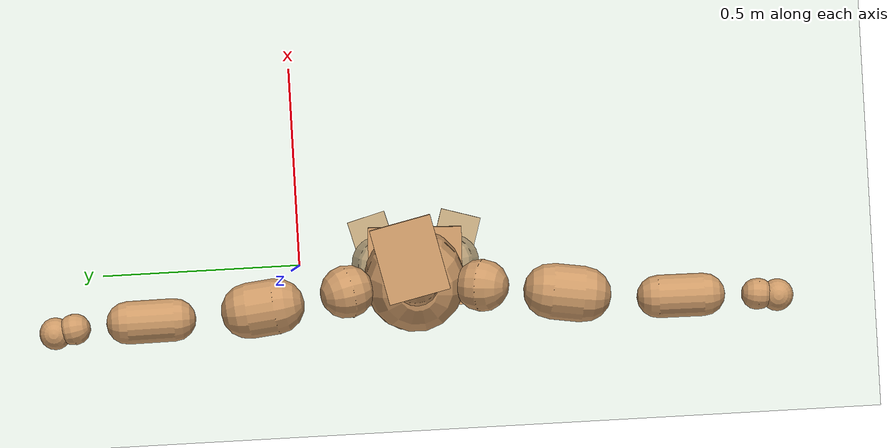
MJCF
<mujoco model="humanoid">
  <compiler coordinate="local" angle="radian"/>
  <default>
    <joint damping="0.0" armature="0.01" stiffness="0.0" limited="true"/>
    <geom conaffinity="1" condim="3" contype="7" margin="0.001" rgba="0.8 0.6 .4 1"/>
  </default>
  <asset>
    <texture type="skybox" builtin="gradient" rgb1=".4 .5 .6" rgb2="0 0 0" width="100" height="100"/>
    <texture builtin="flat" height="1278" mark="cross" markrgb="1 1 1" name="texgeom" random="0.01" rgb1="0.8 0.6 0.4" rgb2="0.8 0.6 0.4" type="cube" width="127"/>
    <texture builtin="checker" height="100" name="texplane" rgb1="0 0 0" rgb2="0.8 0.8 0.8" type="2d" width="100"/>
    <material name="MatPlane" reflectance="0.5" shininess="1" specular="1" texrepeat="60 60" texture="texplane"/>
    <material name="geom" texture="texgeom" texuniform="true"/>
  </asset>
  <worldbody>
    <light cutoff="100" diffuse="1 1 1" dir="-0 0 -1.3" directional="true" exponent="1" pos="0 0 1.3" specular=".1 .1 .1"/>
    <geom conaffinity="1" condim="3" name="floor" pos="0 0 0" rgba="0.8 0.9 0.8 1" size="100 100 .2" type="plane" material="MatPlane"/>
    <body name="Pelvis" pos="-0.0027 -0.2928 0.0415">
      <freejoint name="Pelvis"/>
      <geom type="box" contype="1" conaffinity="1" density="5359.374703" pos="-0.0128 0.0005 -0.0082" size="0.0977 0.1177 0.052" quat="0.9998 0.0000 0.0000 -0.0186" name="Pelvis"/>
      <body name="L_Hip" pos="-0.015 0.0673 -0.0898">
        <joint name="L_Hip_x" type="hinge" pos="0 0 0" axis="1 0 0" stiffness="1600" damping="160" armature="0.02" range="-180.0000 180.0000"/>
        <joint name="L_Hip_y" type="hinge" pos="0 0 0" axis="0 1 0" stiffness="1600" damping="160" armature="0.02" range="-180.0000 180.0000"/>
        <joint name="L_Hip_z" type="hinge" pos="0 0 0" axis="0 0 1" stiffness="1600" damping="160" armature="0.02" range="-180.0000 180.0000"/>
        <geom type="capsule" contype="1" conaffinity="1" density="2040.816327" size="0.0704" fromto="0.0017 0.0108 -0.0998 0.0049 0.0307 -0.2841" name="L_Hip"/>
        <body name="L_Knee" pos="0.0066 0.0415 -0.3838">
          <joint name="L_Knee_x" type="hinge" pos="0 0 0" axis="1 0 0" stiffness="1600" damping="160" armature="0.02" range="-180.0000 180.0000"/>
          <joint name="L_Knee_y" type="hinge" pos="0 0 0" axis="0 1 0" stiffness="1600" damping="160" armature="0.02" range="-180.0000 180.0000"/>
          <joint name="L_Knee_z" type="hinge" pos="0 0 0" axis="0 0 1" stiffness="1600" damping="160" armature="0.02" range="-180.0000 180.0000"/>
          <geom type="capsule" contype="1" conaffinity="1" density="1234.567901" size="0.0628" fromto="-0.0091 -0.0036 -0.0922 -0.0338 -0.0134 -0.3423" name="L_Knee"/>
          <body name="L_Ankle" pos="-0.0428 -0.017 -0.4345">
            <joint name="L_Ankle_x" type="hinge" pos="0 0 0" axis="1 0 0" stiffness="1600" damping="160" armature="0.02" range="-180.0000 180.0000"/>
            <joint name="L_Ankle_y" type="hinge" pos="0 0 0" axis="0 1 0" stiffness="1600" damping="160" armature="0.02" range="-180.0000 180.0000"/>
            <joint name="L_Ankle_z" type="hinge" pos="0 0 0" axis="0 0 1" stiffness="1600" damping="160" armature="0.02" range="-180.0000 180.0000"/>
            <geom type="box" contype="1" conaffinity="1" density="999.999958" pos="0.0654 0.0177 -0.0313" size="0.0965 0.0547 0.0236" quat="0.9913 0.0000 0.0000 0.1318" name="L_Ankle"/>
            <body name="L_Toe" pos="0.1309 0.0354 -0.0626">
              <joint name="L_Toe_x" type="hinge" pos="0 0 0" axis="1 0 0" stiffness="1000" damping="100" armature="0.02" range="-180.0000 180.0000"/>
              <joint name="L_Toe_y" type="hinge" pos="0 0 0" axis="0 1 0" stiffness="1000" damping="100" armature="0.02" range="-180.0000 180.0000"/>
              <joint name="L_Toe_z" type="hinge" pos="0 0 0" axis="0 0 1" stiffness="1000" damping="100" armature="0.02" range="-180.0000 180.0000"/>
              <geom type="box" contype="1" conaffinity="1" density="8670402.295368" pos="0.0000 0.0000 0.0312" size="0.0011 0.0027 0.0012" quat="0.9906 0.0000 0.0000 0.1369" name="L_Toe"/>
            </body>
          </body>
        </body>
      </body>
      <body name="R_Hip" pos="-0.0118 -0.0686 -0.0968">
        <joint name="R_Hip_x" type="hinge" pos="0 0 0" axis="1 0 0" stiffness="1600" damping="160" armature="0.02" range="-180.0000 180.0000"/>
        <joint name="R_Hip_y" type="hinge" pos="0 0 0" axis="0 1 0" stiffness="1600" damping="160" armature="0.02" range="-180.0000 180.0000"/>
        <joint name="R_Hip_z" type="hinge" pos="0 0 0" axis="0 0 1" stiffness="1600" damping="160" armature="0.02" range="-180.0000 180.0000"/>
        <geom type="capsule" contype="1" conaffinity="1" density="2040.816327" size="0.0699" fromto="-0.0013 -0.0105 -0.0994 -0.0036 -0.0304 -0.2882" name="R_Hip"/>
        <body name="R_Knee" pos="-0.0049 -0.0409 -0.3876">
          <joint name="R_Knee_x" type="hinge" pos="0 0 0" axis="1 0 0" stiffness="1600" damping="160" armature="0.02" range="-180.0000 180.0000"/>
          <joint name="R_Knee_y" type="hinge" pos="0 0 0" axis="0 1 0" stiffness="1600" damping="160" armature="0.02" range="-180.0000 180.0000"/>
          <joint name="R_Knee_z" type="hinge" pos="0 0 0" axis="0 0 1" stiffness="1600" damping="160" armature="0.02" range="-180.0000 180.0000"/>
          <geom type="capsule" contype="1" conaffinity="1" density="1234.567901" size="0.0621" fromto="-0.0083 0.0045 -0.0917 -0.0305 0.0166 -0.3388" name="R_Knee"/>
          <body name="R_Ankle" pos="-0.0388 0.0211 -0.4305">
            <joint name="R_Ankle_x" type="hinge" pos="0 0 0" axis="1 0 0" stiffness="1600" damping="160" armature="0.02" range="-180.0000 180.0000"/>
            <joint name="R_Ankle_y" type="hinge" pos="0 0 0" axis="0 1 0" stiffness="1600" damping="160" armature="0.02" range="-180.0000 180.0000"/>
            <joint name="R_Ankle_z" type="hinge" pos="0 0 0" axis="0 0 1" stiffness="1600" damping="160" armature="0.02" range="-180.0000 180.0000"/>
            <geom type="box" contype="1" conaffinity="1" density="999.999914" pos="0.0687 -0.0207 -0.0324" size="0.0938 0.0572 0.0229" quat="0.9893 0.0000 0.0000 -0.1457" name="R_Ankle"/>
            <body name="R_Toe" pos="0.1373 -0.0413 -0.0648">
              <joint name="R_Toe_x" type="hinge" pos="0 0 0" axis="1 0 0" stiffness="1000" damping="100" armature="0.02" range="-180.0000 180.0000"/>
              <joint name="R_Toe_y" type="hinge" pos="0 0 0" axis="0 1 0" stiffness="1000" damping="100" armature="0.02" range="-180.0000 180.0000"/>
              <joint name="R_Toe_z" type="hinge" pos="0 0 0" axis="0 0 1" stiffness="1000" damping="100" armature="0.02" range="-180.0000 180.0000"/>
              <geom type="box" contype="1" conaffinity="1" density="8015150.315832" pos="0.0000 0.0000 0.0329" size="0.0012 0.0027 0.0012" quat="0.9905 0.0000 0.0000 -0.1372" name="R_Toe"/>
            </body>
          </body>
        </body>
      </body>
      <body name="Torso" pos="-0.0502 0.0042 0.1372">
        <joint name="Torso_x" type="hinge" pos="0 0 0" axis="1 0 0" stiffness="2000" damping="200" armature="0.02" range="-180.0000 180.0000"/>
        <joint name="Torso_y" type="hinge" pos="0 0 0" axis="0 1 0" stiffness="2000" damping="200" armature="0.02" range="-180.0000 180.0000"/>
        <joint name="Torso_z" type="hinge" pos="0 0 0" axis="0 0 1" stiffness="2000" damping="200" armature="0.02" range="-180.0000 180.0000"/>
        <geom type="capsule" contype="1" conaffinity="1" density="2040.816327" size="0.0931" fromto="0.0161 0.0033 0.0916 0.0120 0.0025 0.0684" name="Torso"/>
        <body name="Spine" pos="0.0282 0.0058 0.16">
          <joint name="Spine_x" type="hinge" pos="0 0 0" axis="1 0 0" stiffness="2000" damping="200" armature="0.02" range="-180.0000 180.0000"/>
          <joint name="Spine_y" type="hinge" pos="0 0 0" axis="0 1 0" stiffness="2000" damping="200" armature="0.02" range="-180.0000 180.0000"/>
          <joint name="Spine_z" type="hinge" pos="0 0 0" axis="0 0 1" stiffness="2000" damping="200" armature="0.02" range="-180.0000 180.0000"/>
          <geom type="capsule" contype="1" conaffinity="1" density="2040.816327" size="0.092" fromto="0.0069 -0.0034 0.0917 -0.0019 0.0009 -0.0249" name="Spine"/>
          <body name="Chest" pos="0.005 -0.0025 0.0668">
            <joint name="Chest_x" type="hinge" pos="0 0 0" axis="1 0 0" stiffness="2000" damping="200" armature="0.02" range="-180.0000 180.0000"/>
            <joint name="Chest_y" type="hinge" pos="0 0 0" axis="0 1 0" stiffness="2000" damping="200" armature="0.02" range="-180.0000 180.0000"/>
            <joint name="Chest_z" type="hinge" pos="0 0 0" axis="0 0 1" stiffness="2000" damping="200" armature="0.02" range="-180.0000 180.0000"/>
            <geom type="capsule" contype="1" conaffinity="1" density="2040.816327" size="0.1183" fromto="-0.0219 -0.0063 0.1161 -0.0105 -0.0030 0.0553" name="Chest"/>
            <body name="Neck" pos="-0.0478 -0.0152 0.2545">
              <joint name="Neck_x" type="hinge" pos="0 0 0" axis="1 0 0" stiffness="1000" damping="100" armature="0.02" range="-180.0000 180.0000"/>
              <joint name="Neck_y" type="hinge" pos="0 0 0" axis="0 1 0" stiffness="1000" damping="100" armature="0.02" range="-180.0000 180.0000"/>
              <joint name="Neck_z" type="hinge" pos="0 0 0" axis="0 0 1" stiffness="1000" damping="100" armature="0.02" range="-180.0000 180.0000"/>
              <geom type="capsule" contype="1" conaffinity="1" density="1000" size="0.0516" fromto="0.0287 0.0055 0.0507 0.0297 0.0057 0.0524" name="Neck"/>
              <body name="Head" pos="0.0584 0.0113 0.1032">
                <joint name="Head_x" type="hinge" pos="0 0 0" axis="1 0 0" stiffness="1000" damping="100" armature="0.02" range="-180.0000 180.0000"/>
                <joint name="Head_y" type="hinge" pos="0 0 0" axis="0 1 0" stiffness="1000" damping="100" armature="0.02" range="-180.0000 180.0000"/>
                <joint name="Head_z" type="hinge" pos="0 0 0" axis="0 0 1" stiffness="1000" damping="100" armature="0.02" range="-180.0000 180.0000"/>
                <geom type="box" contype="1" conaffinity="1" density="2250.000135" pos="0.0302 0.0066 0.0526" size="0.0861 0.0706 0.0605" quat="0.9942 0.0000 0.0000 0.1080" name="Head"/>
              </body>
            </body>
            <body name="L_Thorax" pos="-0.0203 0.0837 0.1313">
              <joint name="L_Thorax_x" type="hinge" pos="0 0 0" axis="1 0 0" stiffness="1000" damping="100" armature="0.02" range="-180.0000 180.0000"/>
              <joint name="L_Thorax_y" type="hinge" pos="0 0 0" axis="0 1 0" stiffness="1000" damping="100" armature="0.02" range="-180.0000 180.0000"/>
              <joint name="L_Thorax_z" type="hinge" pos="0 0 0" axis="0 0 1" stiffness="1000" damping="100" armature="0.02" range="-180.0000 180.0000"/>
              <geom type="capsule" contype="1" conaffinity="1" density="1000" size="0.0629" fromto="-0.0130 0.0705 0.0241 -0.0134 0.0724 0.0247" name="L_Thorax"/>
              <body name="L_Shoulder" pos="-0.0264 0.1429 0.0488">
                <joint name="L_Shoulder_x" type="hinge" pos="0 0 0" axis="1 0 0" stiffness="1000" damping="100" armature="0.02" range="-720.0000 720.0000"/>
                <joint name="L_Shoulder_y" type="hinge" pos="0 0 0" axis="0 1 0" stiffness="1000" damping="100" armature="0.02" range="-720.0000 720.0000"/>
                <joint name="L_Shoulder_z" type="hinge" pos="0 0 0" axis="0 0 1" stiffness="1000" damping="100" armature="0.02" range="-720.0000 720.0000"/>
                <geom type="capsule" contype="1" conaffinity="1" density="1000" size="0.0662" fromto="-0.0108 0.0954 -0.0060 -0.0180 0.1597 -0.0101" name="L_Shoulder"/>
                <body name="L_Elbow" pos="-0.0288 0.2552 -0.0161">
                  <joint name="L_Elbow_x" type="hinge" pos="0 0 0" axis="1 0 0" stiffness="1000" damping="100" armature="0.02" range="-720.0000 720.0000"/>
                  <joint name="L_Elbow_y" type="hinge" pos="0 0 0" axis="0 1 0" stiffness="1000" damping="100" armature="0.02" range="-720.0000 720.0000"/>
                  <joint name="L_Elbow_z" type="hinge" pos="0 0 0" axis="0 0 1" stiffness="1000" damping="100" armature="0.02" range="-720.0000 720.0000"/>
                  <geom type="capsule" contype="1" conaffinity="1" density="1000" size="0.0503" fromto="-0.0005 0.0801 0.0047 -0.0012 0.1895 0.0111" name="L_Elbow"/>
                  <body name="L_Wrist" pos="-0.0018 0.2697 0.0159">
                    <joint name="L_Wrist_x" type="hinge" pos="0 0 0" axis="1 0 0" stiffness="600" damping="60" armature="0.02" range="-180.0000 180.0000"/>
                    <joint name="L_Wrist_y" type="hinge" pos="0 0 0" axis="0 1 0" stiffness="600" damping="60" armature="0.02" range="-180.0000 180.0000"/>
                    <joint name="L_Wrist_z" type="hinge" pos="0 0 0" axis="0 0 1" stiffness="600" damping="60" armature="0.02" range="-180.0000 180.0000"/>
                    <geom type="capsule" contype="1" conaffinity="1" density="1000" size="0.0369" fromto="-0.0077 0.0446 -0.0057 -0.0080 0.0465 -0.0060" name="L_Wrist"/>
                    <body name="L_Hand" pos="-0.0157 0.0911 -0.0117">
                      <joint name="L_Hand_x" type="hinge" pos="0 0 0" axis="1 0 0" stiffness="600" damping="60" armature="0.02" range="-180.0000 180.0000"/>
                      <joint name="L_Hand_y" type="hinge" pos="0 0 0" axis="0 1 0" stiffness="600" damping="60" armature="0.02" range="-180.0000 180.0000"/>
                      <joint name="L_Hand_z" type="hinge" pos="0 0 0" axis="0 0 1" stiffness="600" damping="60" armature="0.02" range="-180.0000 180.0000"/>
                      <geom type="sphere" contype="1" conaffinity="1" density="1000" size="0.0378" pos="0.0000 0.0000 0.0000" name="L_Hand"/>
                    </body>
                  </body>
                </body>
              </body>
            </body>
            <body name="R_Thorax" pos="-0.029 -0.0965 0.1286">
              <joint name="R_Thorax_x" type="hinge" pos="0 0 0" axis="1 0 0" stiffness="1000" damping="100" armature="0.02" range="-180.0000 180.0000"/>
              <joint name="R_Thorax_y" type="hinge" pos="0 0 0" axis="0 1 0" stiffness="1000" damping="100" armature="0.02" range="-180.0000 180.0000"/>
              <joint name="R_Thorax_z" type="hinge" pos="0 0 0" axis="0 0 1" stiffness="1000" damping="100" armature="0.02" range="-180.0000 180.0000"/>
              <geom type="capsule" contype="1" conaffinity="1" density="1000" size="0.0622" fromto="-0.0070 -0.0650 0.0256 -0.0072 -0.0669 0.0263" name="R_Thorax"/>
              <body name="R_Shoulder" pos="-0.0143 -0.1319 0.0519">
                <joint name="R_Shoulder_x" type="hinge" pos="0 0 0" axis="1 0 0" stiffness="1000" damping="100" armature="0.02" range="-720.0000 720.0000"/>
                <joint name="R_Shoulder_y" type="hinge" pos="0 0 0" axis="0 1 0" stiffness="1000" damping="100" armature="0.02" range="-720.0000 720.0000"/>
                <joint name="R_Shoulder_z" type="hinge" pos="0 0 0" axis="0 0 1" stiffness="1000" damping="100" armature="0.02" range="-720.0000 720.0000"/>
                <geom type="capsule" contype="1" conaffinity="1" density="1000" size="0.0663" fromto="-0.0146 -0.0951 -0.0042 -0.0260 -0.1687 -0.0075" name="R_Shoulder"/>
                <body name="R_Elbow" pos="-0.0406 -0.2638 -0.0117">
                  <joint name="R_Elbow_x" type="hinge" pos="0 0 0" axis="1 0 0" stiffness="1000" damping="100" armature="0.02" range="-720.0000 720.0000"/>
                  <joint name="R_Elbow_y" type="hinge" pos="0 0 0" axis="0 1 0" stiffness="1000" damping="100" armature="0.02" range="-720.0000 720.0000"/>
                  <joint name="R_Elbow_z" type="hinge" pos="0 0 0" axis="0 0 1" stiffness="1000" damping="100" armature="0.02" range="-720.0000 720.0000"/>
                  <geom type="capsule" contype="1" conaffinity="1" density="1000" size="0.0503" fromto="-0.0008 -0.0803 0.0003 -0.0019 -0.1869 0.0006" name="R_Elbow"/>
                  <body name="R_Wrist" pos="-0.0027 -0.2672 0.0009">
                    <joint name="R_Wrist_x" type="hinge" pos="0 0 0" axis="1 0 0" stiffness="600" damping="60" armature="0.02" range="-180.0000 180.0000"/>
                    <joint name="R_Wrist_y" type="hinge" pos="0 0 0" axis="0 1 0" stiffness="600" damping="60" armature="0.02" range="-180.0000 180.0000"/>
                    <joint name="R_Wrist_z" type="hinge" pos="0 0 0" axis="0 0 1" stiffness="600" damping="60" armature="0.02" range="-180.0000 180.0000"/>
                    <geom type="capsule" contype="1" conaffinity="1" density="1000" size="0.0372" fromto="-0.0049 -0.0455 -0.0045 -0.0051 -0.0474 -0.0047" name="R_Wrist"/>
                    <body name="R_Hand" pos="-0.01 -0.0929 -0.0093">
                      <joint name="R_Hand_x" type="hinge" pos="0 0 0" axis="1 0 0" stiffness="600" damping="60" armature="0.02" range="-180.0000 180.0000"/>
                      <joint name="R_Hand_y" type="hinge" pos="0 0 0" axis="0 1 0" stiffness="600" damping="60" armature="0.02" range="-180.0000 180.0000"/>
                      <joint name="R_Hand_z" type="hinge" pos="0 0 0" axis="0 0 1" stiffness="600" damping="60" armature="0.02" range="-180.0000 180.0000"/>
                      <geom type="sphere" contype="1" conaffinity="1" density="1000" size="0.0380" pos="0.0000 0.0000 0.0000" name="R_Hand"/>
                    </body>
                  </body>
                </body>
              </body>
            </body>
          </body>
        </body>
      </body>
    </body>
  </worldbody>
  <actuator>
    <motor name="L_Hip_x" joint="L_Hip_x" gear="500"/>
    <motor name="L_Hip_y" joint="L_Hip_y" gear="500"/>
    <motor name="L_Hip_z" joint="L_Hip_z" gear="500"/>
    <motor name="L_Knee_x" joint="L_Knee_x" gear="500"/>
    <motor name="L_Knee_y" joint="L_Knee_y" gear="500"/>
    <motor name="L_Knee_z" joint="L_Knee_z" gear="500"/>
    <motor name="L_Ankle_x" joint="L_Ankle_x" gear="500"/>
    <motor name="L_Ankle_y" joint="L_Ankle_y" gear="500"/>
    <motor name="L_Ankle_z" joint="L_Ankle_z" gear="500"/>
    <motor name="L_Toe_x" joint="L_Toe_x" gear="500"/>
    <motor name="L_Toe_y" joint="L_Toe_y" gear="500"/>
    <motor name="L_Toe_z" joint="L_Toe_z" gear="500"/>
    <motor name="R_Hip_x" joint="R_Hip_x" gear="500"/>
    <motor name="R_Hip_y" joint="R_Hip_y" gear="500"/>
    <motor name="R_Hip_z" joint="R_Hip_z" gear="500"/>
    <motor name="R_Knee_x" joint="R_Knee_x" gear="500"/>
    <motor name="R_Knee_y" joint="R_Knee_y" gear="500"/>
    <motor name="R_Knee_z" joint="R_Knee_z" gear="500"/>
    <motor name="R_Ankle_x" joint="R_Ankle_x" gear="500"/>
    <motor name="R_Ankle_y" joint="R_Ankle_y" gear="500"/>
    <motor name="R_Ankle_z" joint="R_Ankle_z" gear="500"/>
    <motor name="R_Toe_x" joint="R_Toe_x" gear="500"/>
    <motor name="R_Toe_y" joint="R_Toe_y" gear="500"/>
    <motor name="R_Toe_z" joint="R_Toe_z" gear="500"/>
    <motor name="Torso_x" joint="Torso_x" gear="500"/>
    <motor name="Torso_y" joint="Torso_y" gear="500"/>
    <motor name="Torso_z" joint="Torso_z" gear="500"/>
    <motor name="Spine_x" joint="Spine_x" gear="500"/>
    <motor name="Spine_y" joint="Spine_y" gear="500"/>
    <motor name="Spine_z" joint="Spine_z" gear="500"/>
    <motor name="Chest_x" joint="Chest_x" gear="500"/>
    <motor name="Chest_y" joint="Chest_y" gear="500"/>
    <motor name="Chest_z" joint="Chest_z" gear="500"/>
    <motor name="Neck_x" joint="Neck_x" gear="500"/>
    <motor name="Neck_y" joint="Neck_y" gear="500"/>
    <motor name="Neck_z" joint="Neck_z" gear="500"/>
    <motor name="Head_x" joint="Head_x" gear="500"/>
    <motor name="Head_y" joint="Head_y" gear="500"/>
    <motor name="Head_z" joint="Head_z" gear="500"/>
    <motor name="L_Thorax_x" joint="L_Thorax_x" gear="500"/>
    <motor name="L_Thorax_y" joint="L_Thorax_y" gear="500"/>
    <motor name="L_Thorax_z" joint="L_Thorax_z" gear="500"/>
    <motor name="L_Shoulder_x" joint="L_Shoulder_x" gear="500"/>
    <motor name="L_Shoulder_y" joint="L_Shoulder_y" gear="500"/>
    <motor name="L_Shoulder_z" joint="L_Shoulder_z" gear="500"/>
    <motor name="L_Elbow_x" joint="L_Elbow_x" gear="500"/>
    <motor name="L_Elbow_y" joint="L_Elbow_y" gear="500"/>
    <motor name="L_Elbow_z" joint="L_Elbow_z" gear="500"/>
    <motor name="L_Wrist_x" joint="L_Wrist_x" gear="500"/>
    <motor name="L_Wrist_y" joint="L_Wrist_y" gear="500"/>
    <motor name="L_Wrist_z" joint="L_Wrist_z" gear="500"/>
    <motor name="L_Hand_x" joint="L_Hand_x" gear="500"/>
    <motor name="L_Hand_y" joint="L_Hand_y" gear="500"/>
    <motor name="L_Hand_z" joint="L_Hand_z" gear="500"/>
    <motor name="R_Thorax_x" joint="R_Thorax_x" gear="500"/>
    <motor name="R_Thorax_y" joint="R_Thorax_y" gear="500"/>
    <motor name="R_Thorax_z" joint="R_Thorax_z" gear="500"/>
    <motor name="R_Shoulder_x" joint="R_Shoulder_x" gear="500"/>
    <motor name="R_Shoulder_y" joint="R_Shoulder_y" gear="500"/>
    <motor name="R_Shoulder_z" joint="R_Shoulder_z" gear="500"/>
    <motor name="R_Elbow_x" joint="R_Elbow_x" gear="500"/>
    <motor name="R_Elbow_y" joint="R_Elbow_y" gear="500"/>
    <motor name="R_Elbow_z" joint="R_Elbow_z" gear="500"/>
    <motor name="R_Wrist_x" joint="R_Wrist_x" gear="500"/>
    <motor name="R_Wrist_y" joint="R_Wrist_y" gear="500"/>
    <motor name="R_Wrist_z" joint="R_Wrist_z" gear="500"/>
    <motor name="R_Hand_x" joint="R_Hand_x" gear="500"/>
    <motor name="R_Hand_y" joint="R_Hand_y" gear="500"/>
    <motor name="R_Hand_z" joint="R_Hand_z" gear="500"/>
  </actuator>
  <contact>
    <exclude body1="Torso" body2="Chest"/>
    <exclude body1="Head" body2="Chest"/>
    <exclude body1="R_Knee" body2="R_Toe"/>
    <exclude body1="R_Knee" body2="L_Ankle"/>
    <exclude body1="R_Knee" body2="L_Toe"/>
    <exclude body1="L_Knee" body2="L_Toe"/>
    <exclude body1="L_Knee" body2="R_Ankle"/>
    <exclude body1="L_Knee" body2="R_Toe"/>
    <exclude body1="L_Shoulder" body2="Chest"/>
    <exclude body1="R_Shoulder" body2="Chest"/>
  </contact>
  <sensor/>
  <size njmax="700" nconmax="700"/>
</mujoco>
